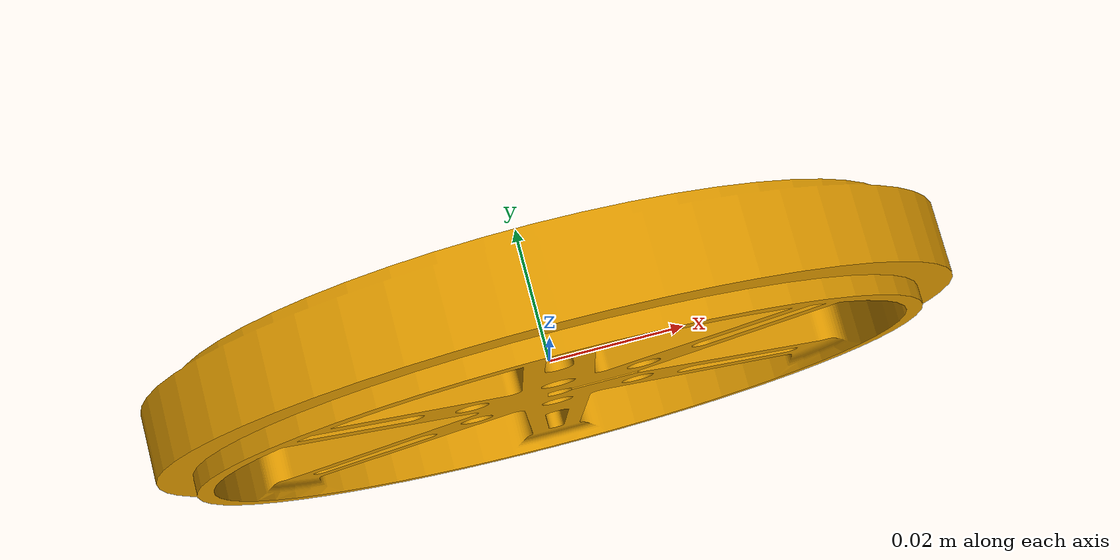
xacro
<?xml version="1.0"?>
<robot name="smocap_chessboard" xmlns:xacro="http://www.ros.org/wiki/xacro">

  <xacro:property name="chsbrd_dx" value="1.0" />
  <xacro:property name="chsbrd_dy" value="1.0" />
  <xacro:property name="chsbrd_dz" value="0.01" />
  <xacro:property name="chsbrd_mass" value="0.01" />

  <!-- Inertia macros -->
  <xacro:include filename="$(find smocap)/urdf/inertias.urdf.xacro" />

  <link name="chessboard_link">

    <visual>
      <origin xyz="0 0 0" rpy="0 0 0"/>
      <geometry>
        <mesh filename="package://smocap/meshes/chessboard.dae"/>
      </geometry>
    </visual>
    <collision>
      <origin xyz="0 0 0" rpy="0 0 0"/>
      <geometry>
        <box size="${chsbrd_dx} ${chsbrd_dy} ${chsbrd_dz}"/>
      </geometry>
    </collision>
    <xacro:inertial_cuboid_with_pose mass="${chsbrd_mass}" x_length="${chsbrd_dx}" y_length="${chsbrd_dy}" z_length="${chsbrd_dz}">
      <origin xyz="0.00  0.00 0" rpy="0 0 0"/>
    </xacro:inertial_cuboid_with_pose>
  </link>

  <gazebo>
    <plugin name="hand_of_god" filename="libgazebo_ros_hand_of_god.so">
      <linkName>chessboard_link</linkName>
      <kl>0.5</kl>
      <ka>0.003</ka>
      <frameId>chessboard_link</frameId>
    </plugin>
  </gazebo>

  <gazebo>
    <plugin name="ground_truth" filename="libgazebo_ros_p3d.so">
      <frameName>world</frameName>
      <bodyName>chessboard_link</bodyName>
      <topicName>smocap/chessboard_truth</topicName>
      <updateRate>30.0</updateRate>
    </plugin>
  </gazebo>

</robot>
